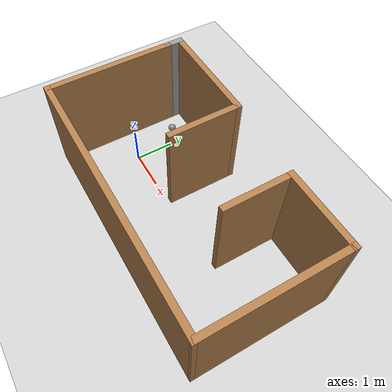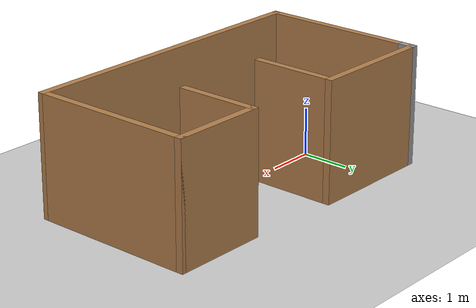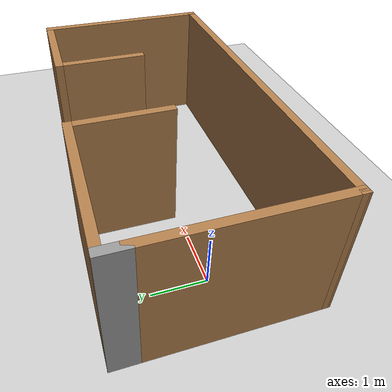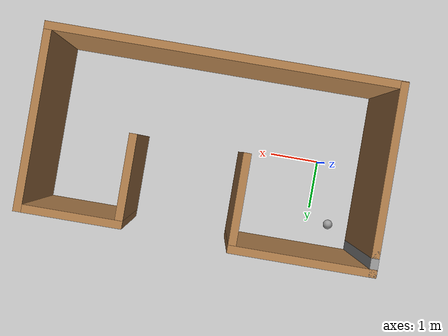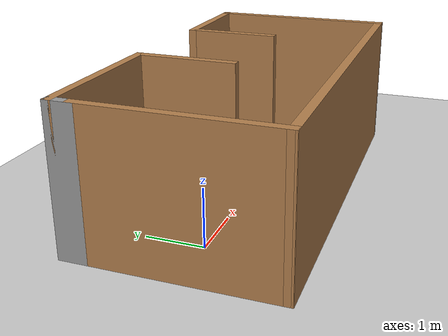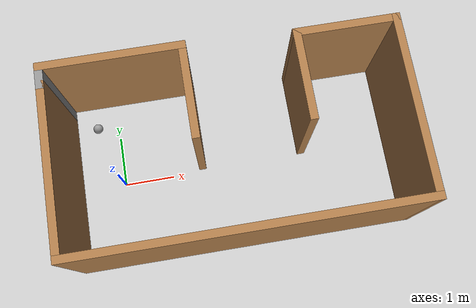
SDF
<sdf version="1.6">
 <world name="default">
  <light name="sun" type="directional">
   <pose>0 0 10 0 -0 0</pose>
   <diffuse>0.8 0.8 0.8 1</diffuse>
   <specular>0.2 0.2 0.2 1</specular>
   <attenuation>
    <range>1000</range>
    <constant>0.9</constant>
    <linear>0.01</linear>
    <quadratic>0.001</quadratic>
   </attenuation>
   <direction>-0.5 0.1 -0.9</direction>
   <spot><inner_angle>0</inner_angle><outer_angle>0</outer_angle><falloff>0</falloff></spot>
  </light>
  <model name="ground_plane">
   <static>1</static>
   <link name="link">
    <collision name="collision">
     <geometry><plane><normal>0 0 1</normal><size>100 100</size></plane></geometry>
     <surface>
      <contact><collide_bitmask>65535</collide_bitmask></contact>
      <friction><ode><mu>100</mu><mu2>50</mu2></ode></friction>
     </surface>
    </collision>
    <visual name="visual">
     <cast_shadows>0</cast_shadows>
     <geometry><plane><normal>0 0 1</normal><size>100 100</size></plane></geometry>
     <material>
      <script><uri>file://media/materials/scripts/gazebo.material</uri><name>Gazebo/Grey</name></script>
     </material>
    </visual>
   </link>
  </model>
  <gravity>0 0 -9.8</gravity>
  <magnetic_field>6e-06 2.3e-05 -4.2e-05</magnetic_field>
  <atmosphere type="adiabatic"/>
  <physics name="default_physics" default="0" type="ode">
   <max_step_size>0.001</max_step_size>
   <real_time_factor>1</real_time_factor>
   <real_time_update_rate>1000</real_time_update_rate>
  </physics>
  <scene><ambient>0.4 0.4 0.4 1</ambient><background>0.7 0.7 0.7 1</background><shadows>1</shadows></scene>
  <spherical_coordinates>
   <surface_model>EARTH_WGS84</surface_model>
   <latitude_deg>0</latitude_deg>
   <longitude_deg>0</longitude_deg>
   <elevation>0</elevation>
   <heading_deg>0</heading_deg>
  </spherical_coordinates>
  <model name="my_ball">
   <link name="link_0">
    <inertial>
     <mass>1</mass>
     <inertia><ixx>0.1</ixx><ixy>0</ixy><ixz>0</ixz><iyy>0.1</iyy><iyz>0</iyz><izz>0.1</izz></inertia>
    </inertial>
    <visual name="visual">
     <geometry><sphere><radius>0.1</radius></sphere></geometry>
     <material>
      <lighting>1</lighting>
      <script><uri>file://media/materials/scripts/gazebo.material</uri><name>Gazebo/Grey</name></script>
      <shader type="pixel"><normal_map>__default__</normal_map></shader>
      <ambient>1 1 1 1</ambient>
      <diffuse>1 1 1 1</diffuse>
      <specular>1 1 1 1</specular>
      <emissive>1 1 1 1</emissive>
     </material>
    </visual>
    <collision name="collision">
     <geometry><sphere><radius>0.1</radius></sphere></geometry>
     <surface>
      <friction>
       <ode><mu>1</mu><mu2>1</mu2><fdir1>0 0 0</fdir1><slip1>0</slip1><slip2>0</slip2></ode>
       <torsional>
        <coefficient>1</coefficient>
        <patch_radius>0</patch_radius>
        <surface_radius>0</surface_radius>
        <use_patch_radius>1</use_patch_radius>
        <ode><slip>0</slip></ode>
       </torsional>
      </friction>
      <bounce><restitution_coefficient>0</restitution_coefficient><threshold>1e+06</threshold></bounce>
      <contact>
       <collide_without_contact>0</collide_without_contact>
       <collide_without_contact_bitmask>1</collide_without_contact_bitmask>
       <collide_bitmask>1</collide_bitmask>
       <ode>
        <soft_cfm>0</soft_cfm>
        <soft_erp>0.2</soft_erp>
        <kp>1e+13</kp>
        <kd>1</kd>
        <max_vel>0.01</max_vel>
        <min_depth>0</min_depth>
       </ode>
       <bullet>
        <split_impulse>1</split_impulse>
        <split_impulse_penetration_threshold>-0.01</split_impulse_penetration_threshold>
        <soft_cfm>0</soft_cfm>
        <soft_erp>0.2</soft_erp>
        <kp>1e+13</kp>
        <kd>1</kd>
       </bullet>
      </contact>
     </surface>
    </collision>
   </link>
   <static>0</static>
   <pose>-0.440719 1.28251 0.1 0 -0 0</pose>
  </model>
  <audio><device>default</device></audio>
  <model name="building">
   <pose>2.31352 0.109972 0 0 -0 0</pose>
   <link name="Wall_10">
    <collision name="Wall_10_Collision">
     <geometry><box><size>0.5 0.15 2.5</size></box></geometry>
     <pose>0 0 1.25 0 -0 0</pose>
    </collision>
    <visual name="Wall_10_Visual">
     <pose>0 0 1.25 0 -0 0</pose>
     <geometry><box><size>0.5 0.15 2.5</size></box></geometry>
     <material>
      <script><uri>file://media/materials/scripts/gazebo.material</uri><name>Gazebo/Grey</name></script>
      <ambient>1 1 1 1</ambient>
     </material>
     <meta><layer>0</layer></meta>
    </visual>
    <pose>-3.275 1.55506 0 0 -0 1.5708</pose>
   </link>
   <link name="Wall_11">
    <collision name="Wall_11_Collision">
     <geometry><box><size>2.75 0.15 2.5</size></box></geometry>
     <pose>0 0 1.25 0 -0 0</pose>
    </collision>
    <visual name="Wall_11_Visual">
     <pose>0 0 1.25 0 -0 0</pose>
     <geometry><box><size>2.75 0.15 2.5</size></box></geometry>
     <material>
      <script><uri>file://media/materials/scripts/gazebo.material</uri><name>Gazebo/Wood</name></script>
      <ambient>1 1 1 1</ambient>
     </material>
     <meta><layer>0</layer></meta>
    </visual>
    <pose>-1.975 1.73006 0 0 -0 0</pose>
   </link>
   <link name="Wall_2">
    <collision name="Wall_2_Collision">
     <geometry><box><size>3.25 0.15 2.5</size></box></geometry>
     <pose>0 0 1.25 0 -0 0</pose>
    </collision>
    <visual name="Wall_2_Visual">
     <pose>0 0 1.25 0 -0 0</pose>
     <geometry><box><size>3.25 0.15 2.5</size></box></geometry>
     <material>
      <script><uri>file://media/materials/scripts/gazebo.material</uri><name>Gazebo/Wood</name></script>
      <ambient>1 1 1 1</ambient>
     </material>
     <meta><layer>0</layer></meta>
    </visual>
    <pose>-3.275 -0.169943 0 0 -0 -1.5708</pose>
   </link>
   <link name="Wall_3">
    <collision name="Wall_3_Collision">
     <geometry><box><size>6.70012 0.15 2.5</size></box></geometry>
     <pose>0 0 1.25 0 -0 0</pose>
    </collision>
    <visual name="Wall_3_Visual">
     <pose>0 0 1.25 0 -0 0</pose>
     <geometry><box><size>6.70012 0.15 2.5</size></box></geometry>
     <material>
      <script><uri>file://media/materials/scripts/gazebo.material</uri><name>Gazebo/Wood</name></script>
      <ambient>1 1 1 1</ambient>
     </material>
     <meta><layer>0</layer></meta>
    </visual>
    <pose>-0 -1.72494 0 0 -0 0.001527</pose>
   </link>
   <link name="Wall_4">
    <collision name="Wall_4_Collision">
     <geometry><box><size>3.5 0.15 2.5</size></box></geometry>
     <pose>0 0 1.25 0 -0 0</pose>
    </collision>
    <visual name="Wall_4_Visual">
     <pose>0 0 1.25 0 -0 0</pose>
     <geometry><box><size>3.5 0.15 2.5</size></box></geometry>
     <material>
      <script><uri>file://media/materials/scripts/gazebo.material</uri><name>Gazebo/Wood</name></script>
      <ambient>1 1 1 1</ambient>
     </material>
     <meta><layer>0</layer></meta>
    </visual>
    <pose>3.275 -0.044943 0 0 -0 1.5708</pose>
   </link>
   <link name="Wall_5">
    <collision name="Wall_5_Collision">
     <geometry><box><size>2 0.15 2.5</size></box></geometry>
     <pose>0 0 1.25 0 -0 0</pose>
    </collision>
    <visual name="Wall_5_Visual">
     <pose>0 0 1.25 0 -0 0</pose>
     <geometry><box><size>2 0.15 2.5</size></box></geometry>
     <material>
      <script><uri>file://media/materials/scripts/gazebo.material</uri><name>Gazebo/Wood</name></script>
      <ambient>1 1 1 1</ambient>
     </material>
     <meta><layer>0</layer></meta>
    </visual>
    <pose>2.35 1.63006 0 0 -0 3.14159</pose>
   </link>
   <link name="Wall_6">
    <collision name="Wall_6_Collision">
     <geometry><box><size>1.75 0.15 2.5</size></box></geometry>
     <pose>0 0 1.25 0 -0 0</pose>
    </collision>
    <visual name="Wall_6_Visual">
     <pose>0 0 1.25 0 -0 0</pose>
     <geometry><box><size>1.75 0.15 2.5</size></box></geometry>
     <material>
      <script><uri>file://media/materials/scripts/gazebo.material</uri><name>Gazebo/Wood</name></script>
      <ambient>1 1 1 1</ambient>
     </material>
     <meta><layer>0</layer></meta>
    </visual>
    <pose>1.425 0.830057 0 0 -0 -1.5708</pose>
   </link>
   <link name="Wall_8">
    <collision name="Wall_8_Collision">
     <geometry><box><size>1.75 0.15 2.5</size></box></geometry>
     <pose>0 0 1.25 0 -0 0</pose>
    </collision>
    <visual name="Wall_8_Visual">
     <pose>0 0 1.25 0 -0 0</pose>
     <geometry><box><size>1.75 0.15 2.5</size></box></geometry>
     <material>
      <script><uri>file://media/materials/scripts/gazebo.material</uri><name>Gazebo/Wood</name></script>
      <ambient>1 1 1 1</ambient>
     </material>
     <meta><layer>0</layer></meta>
    </visual>
    <pose>-0.675 0.830057 0 0 -0 1.5708</pose>
   </link>
   <static>1</static>
  </model>
 </world>
</sdf>
